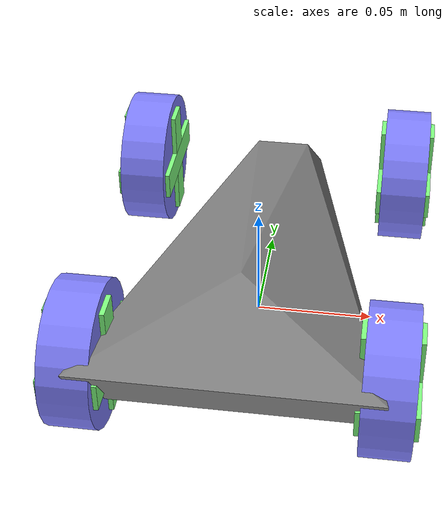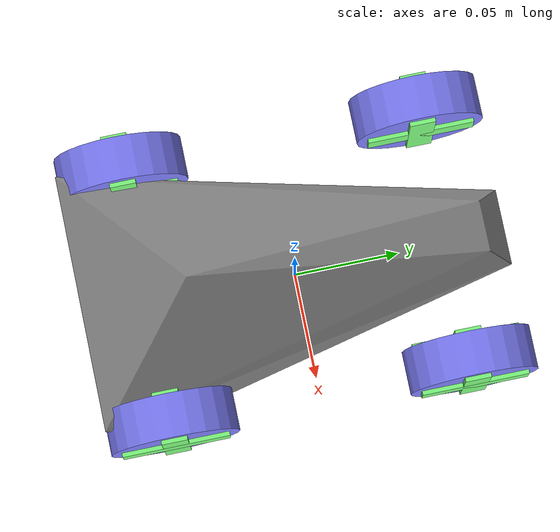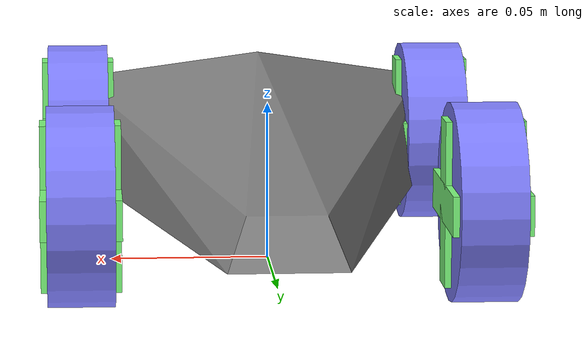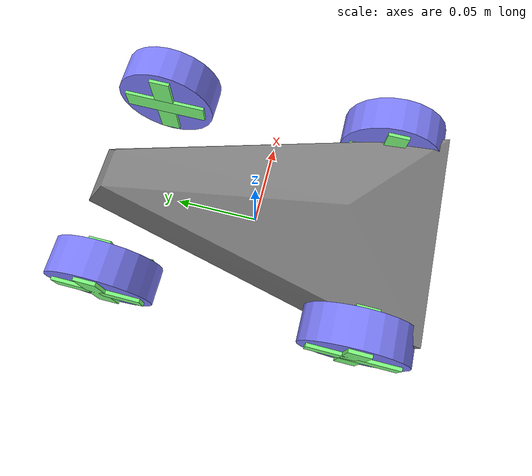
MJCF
<mujoco>
  <compiler autolimits="true"/>

  <option timestep="0.01"/>
  <asset>
    <mesh name="chasis" scale=".01 .006 .0015" vertex=" 9   2   0
              -10  10  10
               9  -2   0
               10  3  -10
               10 -3  -10
              -8   10 -10
              -10 -10  10
              -8  -10 -10
              -5   0   20"/>
  </asset>

  <default>
    <joint damping=".01" actuatorfrcrange="-50 50"/>
    <default class="wheel">
      <geom type="cylinder" size=".03 .01" rgba=".5 .5 1 1" mass="1" condim="6"/>
    </default>
    <default class="decor">
      <site type="box" rgba=".5 1 .5 1"/>
    </default>
  </default>

  <worldbody>
    <body name="car" pos="0 0 .03" euler="0 0 90">
      <freejoint/>
      <light name="top light" pos="0 0 2" mode="trackcom" diffuse=".4 .4 .4"/>
      <geom name="chasis" type="mesh" mesh="chasis" mass="500"/>
      <light name="front light" pos=".1 0 .02" dir="2 0 -1" diffuse="1 1 1"/>
      <camera name="camera1" pos="-0.1 0 0.05" fovy="90" euler="180 -80 90"/>
      <body name="front left wheel" pos=".07 .06 0"  euler="-90 0 0">
        <site name="front_wheel_imu" pos="0 0 0"/>
        <joint name="left forward"/>
        <joint name="front left turn" axis="0 1 0"/>
        <geom class="wheel"/>
        <site class="decor" size=".006 .025 .012"/>
        <site class="decor" size=".025 .006 .012"/>
      </body>
      <body name="front right wheel" pos=".07 -.06 0" euler="-90 0 0">
        <joint name="right forward"/>
        <joint name="front right turn" axis="0 1 0"/>
        <geom class="wheel"/>
        <site class="decor" size=".006 .025 .012"/>
        <site class="decor" size=".025 .006 .012"/>
      </body>
      <body name="rear left wheel" pos="-.07 .06 0" euler="-90 0 0">
        <joint name="rear left"/>
        <geom class="wheel"/>
        <site class="decor" size=".006 .025 .012"/>
        <site class="decor" size=".025 .006 .012"/>
      </body>
      <body name="rear right wheel" pos="-.07 -.06 0" euler="-90 0 0">
        <joint name="rear right"/>
        <geom class="wheel"/>
        <site class="decor" size=".006 .025 .012"/>
        <site class="decor" size=".025 .006 .012"/>
      </body>
    </body>
  </worldbody>

  <tendon>
    <fixed name="forward">
      <joint joint="left forward" coef=".5"/>
      <joint joint="right forward" coef=".5"/>
    </fixed>
  </tendon>

  <actuator>
    <motor name="forward" tendon="forward" ctrlrange="-40 40"/>
  </actuator>

  <sensor>
    <gyro name="wheel_angular_vel" site="front_wheel_imu"/>
  </sensor>
</mujoco>
